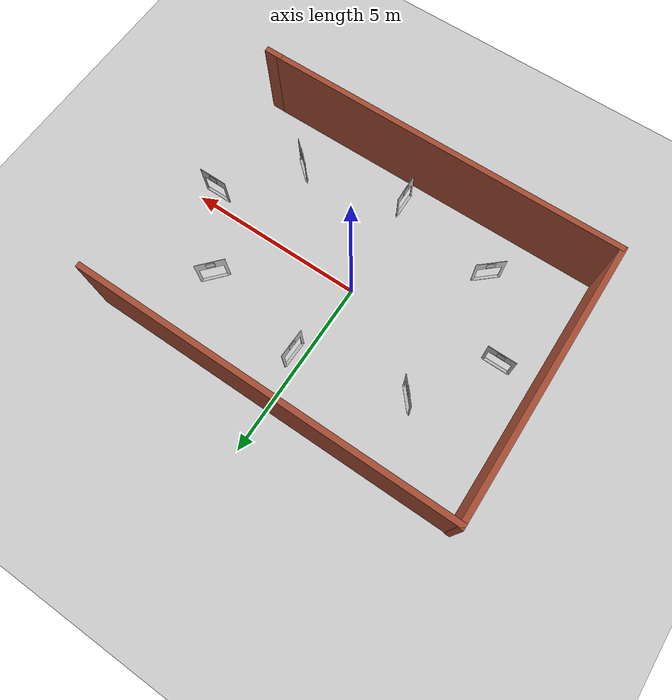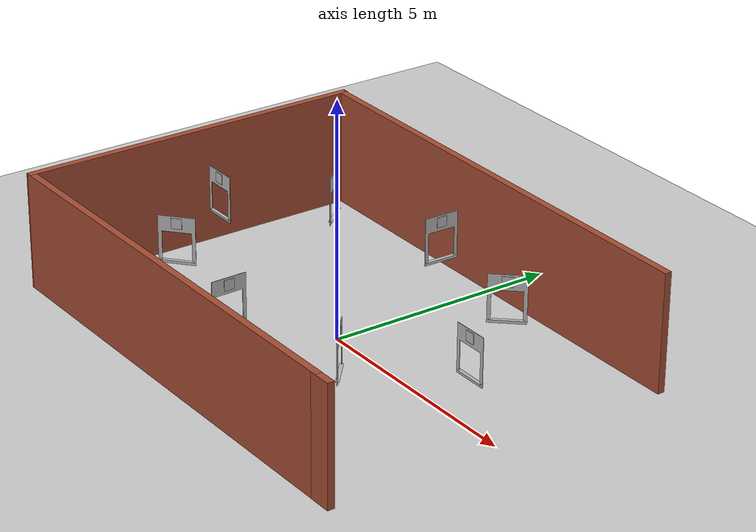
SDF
<sdf version="1.7">
 <world name="default">
  <light name="sun" type="directional">
   <pose>0 0 10 0 -0 0</pose>
   <diffuse>0.8 0.8 0.8 1</diffuse>
   <specular>0.2 0.2 0.2 1</specular>
   <attenuation>
    <range>1000</range>
    <constant>0.9</constant>
    <linear>0.01</linear>
    <quadratic>0.001</quadratic>
   </attenuation>
   <direction>-0.5 0.1 -0.9</direction>
   <spot><inner_angle>0</inner_angle><outer_angle>0</outer_angle><falloff>0</falloff></spot>
  </light>
  <physics name="default_physics" default="0" type="ode">
   <max_step_size>0.002</max_step_size>
   <real_time_factor>0.2</real_time_factor>
   <real_time_update_rate>100</real_time_update_rate>
  </physics>
  <model name="ground_plane">
   <static>1</static>
   <link name="link">
    <collision name="collision">
     <geometry><plane><normal>0 0 1</normal><size>100 100</size></plane></geometry>
     <surface>
      <contact><collide_bitmask>65535</collide_bitmask></contact>
      <friction><ode><mu>100</mu><mu2>50</mu2></ode></friction>
     </surface>
    </collision>
    <visual name="visual">
     <cast_shadows>0</cast_shadows>
     <geometry><plane><normal>0 0 1</normal><size>100 100</size></plane></geometry>
     <material>
      <script><uri>file://media/materials/scripts/gazebo.material</uri><name>Gazebo/Grey</name></script>
     </material>
    </visual>
   </link>
  </model>
  <gravity>0 0 -9.8</gravity>
  <magnetic_field>6e-06 2.3e-05 -4.2e-05</magnetic_field>
  <atmosphere type="adiabatic"/>
  <physics type="ode">
   <max_step_size>0.001</max_step_size>
   <real_time_factor>1</real_time_factor>
   <real_time_update_rate>1000</real_time_update_rate>
  </physics>
  <scene><ambient>0.4 0.4 0.4 1</ambient><background>0.7 0.7 0.7 1</background><shadows>1</shadows></scene>
  <spherical_coordinates>
   <surface_model>EARTH_WGS84</surface_model>
   <latitude_deg>0</latitude_deg>
   <longitude_deg>0</longitude_deg>
   <elevation>0</elevation>
   <heading_deg>0</heading_deg>
  </spherical_coordinates>
  <model name="course_building">
   <pose>-0.08118 0.04463 0 0 -0 0</pose>
   <link name="Wall_0">
    <collision name="Wall_0_Collision">
     <geometry><box><size>10.0116 0.15 2.5</size></box></geometry>
     <pose>0 0 1.25 0 -0 0</pose>
    </collision>
    <visual name="Wall_0_Visual">
     <pose>0 0 1.25 0 -0 0</pose>
     <geometry><box><size>10.0116 0.15 2.5</size></box></geometry>
     <material>
      <script><uri>file://media/materials/scripts/gazebo.material</uri><name>Gazebo/Bricks</name></script>
      <ambient>1 1 1 1</ambient>
     </material>
     <meta><layer>0</layer></meta>
    </visual>
    <pose>-0.189558 -3.69776 0 0 -0 -3.1369</pose>
   </link>
   <link name="Wall_6">
    <collision name="Wall_6_Collision">
     <geometry><box><size>7.59196 0.15 2.5</size></box></geometry>
     <pose>0 0 1.25 0 -0 0</pose>
    </collision>
    <visual name="Wall_6_Visual">
     <pose>0 0 1.25 0 -0 0</pose>
     <geometry><box><size>7.59196 0.15 2.5</size></box></geometry>
     <material>
      <script><uri>file://media/materials/scripts/gazebo.material</uri><name>Gazebo/Bricks</name></script>
      <ambient>1 1 1 1</ambient>
     </material>
     <meta><layer>0</layer></meta>
    </visual>
    <pose>-5.17058 7.4e-05 0 0 -0 1.5735</pose>
   </link>
   <link name="Wall_7">
    <collision name="Wall_7_Collision">
     <geometry><box><size>10.5115 0.15 2.5</size></box></geometry>
     <pose>0 0 1.25 0 -0 0</pose>
    </collision>
    <visual name="Wall_7_Visual">
     <pose>0 0 1.25 0 -0 0</pose>
     <geometry><box><size>10.5115 0.15 2.5</size></box></geometry>
     <material>
      <script><uri>file://media/materials/scripts/gazebo.material</uri><name>Gazebo/Bricks</name></script>
      <ambient>1 1 1 1</ambient>
     </material>
     <meta><layer>0</layer></meta>
    </visual>
    <pose>0.000101 3.70093 0 0 -0 0</pose>
   </link>
   <static>1</static>
  </model>
  <model name="corner">
   <pose>2.55336 -1.85385 0 0 -0 0</pose>
   <link name="Wall_22">
    <collision name="Wall_22_Collision">
     <geometry><box><size>0.5 0.15 2.5</size></box></geometry>
     <pose>0 0 1.25 0 -0 0</pose>
    </collision>
    <visual name="Wall_22_Visual">
     <pose>0 0 1.25 0 -0 0</pose>
     <geometry><box><size>0.5 0.15 2.5</size></box></geometry>
     <material>
      <script><uri>file://media/materials/scripts/gazebo.material</uri><name>Gazebo/Bricks</name></script>
      <ambient>1 1 1 1</ambient>
     </material>
     <meta><layer>0</layer></meta>
    </visual>
    <pose>2.30336 -1.77885 0 0 -0 0</pose>
   </link>
   <static>1</static>
  </model>
  <model name="Cutout 0">
   <pose>4.1966 0.07601 1 0 -0 0</pose>
   <static>1</static>
   <link name="cutout_obstacle">
    <collision name="collision">
     <geometry><mesh><uri>model://cutout_0/meshes/cutout.stl</uri><scale>1 1 1</scale></mesh></geometry>
    </collision>
    <visual name="visual">
     <geometry><mesh><uri>model://cutout_0/meshes/cutout.stl</uri><scale>1 1 1</scale></mesh></geometry>
    </visual>
   </link>
   <link name="april_tag_front">
    <pose>0 -0.09 0.87 -1.57079 -1.57079 3.14159</pose>
    <visual name="at_visual_front">
     <geometry><box><size>0.22 0.22 0.01</size></box></geometry>
     <material>
      <script>
       <uri>model://Apriltag36_11_00000/materials/scripts</uri>
       <uri>model://Apriltag36_11_00000/materials/textures</uri>
       <name>Apriltag36_11_00000</name>
      </script>
     </material>
    </visual>
   </link>
   <link name="april_tag_back">
    <pose>0 -0.06 0.87 -1.57079 1.57079 3.14159</pose>
    <visual name="at_visual_back">
     <geometry><box><size>0.22 0.22 0.01</size></box></geometry>
     <material>
      <script>
       <uri>model://Apriltag36_11_00000/materials/scripts</uri>
       <uri>model://Apriltag36_11_00000/materials/textures</uri>
       <name>Apriltag36_11_00000</name>
      </script>
     </material>
    </visual>
   </link>
  </model>
  <model name="Cutout 4">
   <pose>-4.15422 0.060473 1 0 -0 0</pose>
   <static>1</static>
   <link name="cutout_obstacle">
    <collision name="collision">
     <geometry><mesh><uri>model://cutout_4/meshes/cutout.stl</uri><scale>1 1 1</scale></mesh></geometry>
    </collision>
    <visual name="visual">
     <geometry><mesh><uri>model://cutout_4/meshes/cutout.stl</uri><scale>1 1 1</scale></mesh></geometry>
    </visual>
   </link>
   <link name="april_tag_front">
    <pose>0 -0.09 0.87 -1.57079 -1.57079 3.14159</pose>
    <visual name="at_visual_front">
     <geometry><box><size>0.22 0.22 0.01</size></box></geometry>
     <material>
      <script>
       <uri>model://Apriltag36_11_00004/materials/scripts</uri>
       <uri>model://Apriltag36_11_00004/materials/textures</uri>
       <name>Apriltag36_11_00004</name>
      </script>
     </material>
    </visual>
   </link>
   <link name="april_tag_back">
    <pose>0 -0.06 0.87 -1.57079 1.57079 3.14159</pose>
    <visual name="at_visual_back">
     <geometry><box><size>0.22 0.22 0.01</size></box></geometry>
     <material>
      <script>
       <uri>model://Apriltag36_11_00004/materials/scripts</uri>
       <uri>model://Apriltag36_11_00004/materials/textures</uri>
       <name>Apriltag36_11_00004</name>
      </script>
     </material>
    </visual>
   </link>
  </model>
  <model name="Cutout 1">
   <pose>2.77232 1.95491 1 0 -0 0.841811</pose>
   <static>1</static>
   <link name="cutout_obstacle">
    <collision name="collision">
     <geometry><mesh><uri>model://cutout_1/meshes/cutout.stl</uri><scale>1 1 1</scale></mesh></geometry>
    </collision>
    <visual name="visual">
     <geometry><mesh><uri>model://cutout_1/meshes/cutout.stl</uri><scale>1 1 1</scale></mesh></geometry>
    </visual>
   </link>
   <link name="april_tag_front">
    <pose>0 -0.09 0.87 -1.57079 -1.57079 3.14159</pose>
    <visual name="at_visual_front">
     <geometry><box><size>0.22 0.22 0.01</size></box></geometry>
     <material>
      <script>
       <uri>model://Apriltag36_11_00001/materials/scripts</uri>
       <uri>model://Apriltag36_11_00001/materials/textures</uri>
       <name>Apriltag36_11_00001</name>
      </script>
     </material>
    </visual>
   </link>
   <link name="april_tag_back">
    <pose>0 -0.06 0.87 -1.57079 1.57079 3.14159</pose>
    <visual name="at_visual_back">
     <geometry><box><size>0.22 0.22 0.01</size></box></geometry>
     <material>
      <script>
       <uri>model://Apriltag36_11_00001/materials/scripts</uri>
       <uri>model://Apriltag36_11_00001/materials/textures</uri>
       <name>Apriltag36_11_00001</name>
      </script>
     </material>
    </visual>
   </link>
  </model>
  <model name="Cutout 2">
   <pose>-0.047027 2.44768 1 0 -0 1.54845</pose>
   <static>1</static>
   <link name="cutout_obstacle">
    <collision name="collision">
     <geometry><mesh><uri>model://cutout_2/meshes/cutout.stl</uri><scale>1 1 1</scale></mesh></geometry>
    </collision>
    <visual name="visual">
     <geometry><mesh><uri>model://cutout_2/meshes/cutout.stl</uri><scale>1 1 1</scale></mesh></geometry>
    </visual>
   </link>
   <link name="april_tag_front">
    <pose>0 -0.09 0.87 -1.57079 -1.57079 3.14159</pose>
    <visual name="at_visual_front">
     <geometry><box><size>0.22 0.22 0.01</size></box></geometry>
     <material>
      <script>
       <uri>model://Apriltag36_11_00002/materials/scripts</uri>
       <uri>model://Apriltag36_11_00002/materials/textures</uri>
       <name>Apriltag36_11_00002</name>
      </script>
     </material>
    </visual>
   </link>
   <link name="april_tag_back">
    <pose>0 -0.06 0.87 -1.57079 1.57079 3.14159</pose>
    <visual name="at_visual_back">
     <geometry><box><size>0.22 0.22 0.01</size></box></geometry>
     <material>
      <script>
       <uri>model://Apriltag36_11_00002/materials/scripts</uri>
       <uri>model://Apriltag36_11_00002/materials/textures</uri>
       <name>Apriltag36_11_00002</name>
      </script>
     </material>
    </visual>
   </link>
  </model>
  <model name="Cutout 3">
   <pose>-2.74945 1.92062 1 0 0 -0.852637</pose>
   <static>1</static>
   <link name="cutout_obstacle">
    <collision name="collision">
     <geometry><mesh><uri>model://cutout_3/meshes/cutout.stl</uri><scale>1 1 1</scale></mesh></geometry>
    </collision>
    <visual name="visual">
     <geometry><mesh><uri>model://cutout_3/meshes/cutout.stl</uri><scale>1 1 1</scale></mesh></geometry>
    </visual>
   </link>
   <link name="april_tag_front">
    <pose>0 -0.09 0.87 -1.57079 -1.57079 3.14159</pose>
    <visual name="at_visual_front">
     <geometry><box><size>0.22 0.22 0.01</size></box></geometry>
     <material>
      <script>
       <uri>model://Apriltag36_11_00003/materials/scripts</uri>
       <uri>model://Apriltag36_11_00003/materials/textures</uri>
       <name>Apriltag36_11_00003</name>
      </script>
     </material>
    </visual>
   </link>
   <link name="april_tag_back">
    <pose>0 -0.06 0.87 -1.57079 1.57079 3.14159</pose>
    <visual name="at_visual_back">
     <geometry><box><size>0.22 0.22 0.01</size></box></geometry>
     <material>
      <script>
       <uri>model://Apriltag36_11_00003/materials/scripts</uri>
       <uri>model://Apriltag36_11_00003/materials/textures</uri>
       <name>Apriltag36_11_00003</name>
      </script>
     </material>
    </visual>
   </link>
  </model>
  <model name="Cutout 5">
   <pose>-2.86377 -1.79486 1 0 -0 0.724841</pose>
   <static>1</static>
   <link name="cutout_obstacle">
    <collision name="collision">
     <geometry><mesh><uri>model://cutout_5/meshes/cutout.stl</uri><scale>1 1 1</scale></mesh></geometry>
    </collision>
    <visual name="visual">
     <geometry><mesh><uri>model://cutout_5/meshes/cutout.stl</uri><scale>1 1 1</scale></mesh></geometry>
    </visual>
   </link>
   <link name="april_tag_front">
    <pose>0 -0.09 0.87 -1.57079 -1.57079 3.14159</pose>
    <visual name="at_visual_front">
     <geometry><box><size>0.22 0.22 0.01</size></box></geometry>
     <material>
      <script>
       <uri>model://Apriltag36_11_00005/materials/scripts</uri>
       <uri>model://Apriltag36_11_00005/materials/textures</uri>
       <name>Apriltag36_11_00005</name>
      </script>
     </material>
    </visual>
   </link>
   <link name="april_tag_back">
    <pose>0 -0.06 0.87 -1.57079 1.57079 3.14159</pose>
    <visual name="at_visual_back">
     <geometry><box><size>0.22 0.22 0.01</size></box></geometry>
     <material>
      <script>
       <uri>model://Apriltag36_11_00005/materials/scripts</uri>
       <uri>model://Apriltag36_11_00005/materials/textures</uri>
       <name>Apriltag36_11_00005</name>
      </script>
     </material>
    </visual>
   </link>
  </model>
  <model name="Cutout 6">
   <pose>0.058495 -2.4226 1 0 0 -1.55123</pose>
   <static>1</static>
   <link name="cutout_obstacle">
    <collision name="collision">
     <geometry><mesh><uri>model://cutout_6/meshes/cutout.stl</uri><scale>1 1 1</scale></mesh></geometry>
    </collision>
    <visual name="visual">
     <geometry><mesh><uri>model://cutout_6/meshes/cutout.stl</uri><scale>1 1 1</scale></mesh></geometry>
    </visual>
   </link>
   <link name="april_tag_front">
    <pose>0 -0.09 0.87 -1.57079 -1.57079 3.14159</pose>
    <visual name="at_visual_front">
     <geometry><box><size>0.22 0.22 0.01</size></box></geometry>
     <material>
      <script>
       <uri>model://Apriltag36_11_00006/materials/scripts</uri>
       <uri>model://Apriltag36_11_00006/materials/textures</uri>
       <name>Apriltag36_11_00006</name>
      </script>
     </material>
    </visual>
   </link>
   <link name="april_tag_back">
    <pose>0 -0.06 0.87 -1.57079 1.57079 3.14159</pose>
    <visual name="at_visual_back">
     <geometry><box><size>0.22 0.22 0.01</size></box></geometry>
     <material>
      <script>
       <uri>model://Apriltag36_11_00006/materials/scripts</uri>
       <uri>model://Apriltag36_11_00006/materials/textures</uri>
       <name>Apriltag36_11_00006</name>
      </script>
     </material>
    </visual>
   </link>
  </model>
  <model name="Cutout 7">
   <pose>2.80661 -1.78343 1 0 0 -0.719272</pose>
   <static>1</static>
   <link name="cutout_obstacle">
    <collision name="collision">
     <geometry><mesh><uri>model://cutout_7/meshes/cutout.stl</uri><scale>1 1 1</scale></mesh></geometry>
    </collision>
    <visual name="visual">
     <geometry><mesh><uri>model://cutout_7/meshes/cutout.stl</uri><scale>1 1 1</scale></mesh></geometry>
    </visual>
   </link>
   <link name="april_tag_front">
    <pose>0 -0.09 0.87 -1.57079 -1.57079 3.14159</pose>
    <visual name="at_visual_front">
     <geometry><box><size>0.22 0.22 0.01</size></box></geometry>
     <material>
      <script>
       <uri>model://Apriltag36_11_00007/materials/scripts</uri>
       <uri>model://Apriltag36_11_00007/materials/textures</uri>
       <name>Apriltag36_11_00007</name>
      </script>
     </material>
    </visual>
   </link>
   <link name="april_tag_back">
    <pose>0 -0.06 0.87 -1.57079 1.57079 3.14159</pose>
    <visual name="at_visual_back">
     <geometry><box><size>0.22 0.22 0.01</size></box></geometry>
     <material>
      <script>
       <uri>model://Apriltag36_11_00007/materials/scripts</uri>
       <uri>model://Apriltag36_11_00007/materials/textures</uri>
       <name>Apriltag36_11_00007</name>
      </script>
     </material>
    </visual>
   </link>
  </model>
 </world>
</sdf>
